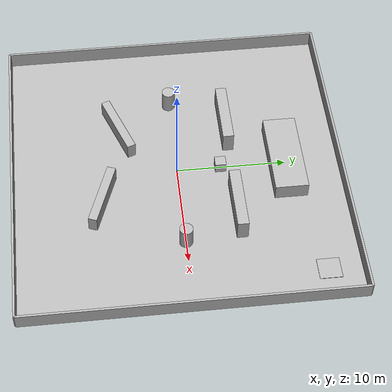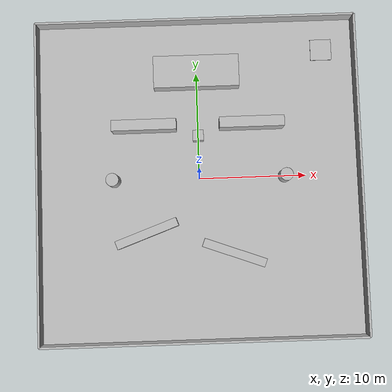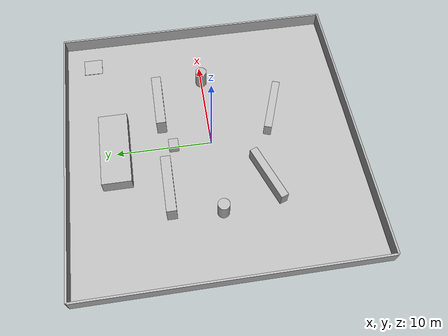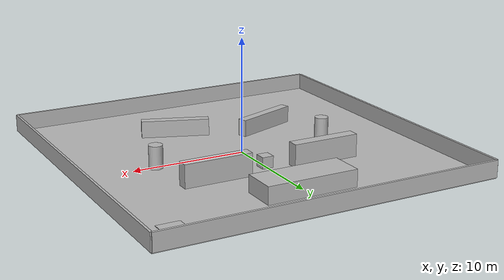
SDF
<?xml version="1.0" ?>
<sdf version="1.10">

  <world name="competition_world">

    <!-- Physics -->
    <gravity>0 0 -9.81</gravity>

    <plugin filename="gz-sim-physics-system"
            name="gz::sim::systems::Physics"/>

    <plugin filename="gz-sim-user-commands-system"
            name="gz::sim::systems::UserCommands"/>

    <plugin filename="gz-sim-scene-broadcaster-system"
            name="gz::sim::systems::SceneBroadcaster"/>

    <plugin filename="gz-sim-sensors-system"
            name="gz::sim::systems::Sensors">
      <render_engine>ogre2</render_engine>
    </plugin>

    <!-- Light -->
    <light type="directional" name="sun">
      <pose>0 0 20 0 0 0</pose>
      <direction>-0.5 0.5 -1</direction>
    </light>

    <!-- Ground -->
    <model name="ground">
      <static>true</static>
      <link name="link">

        <collision name="collision">
          <geometry>
            <box>
              <size>30 30 0.1</size>
            </box>
          </geometry>
          <pose>0 0 -0.05 0 0 0</pose>
        </collision>

        <visual name="visual">
          <geometry>
            <box>
              <size>30 30 0.1</size>
            </box>
          </geometry>
          <pose>0 0 -0.05 0 0 0</pose>
        </visual>

      </link>
    </model>

    <!-- North wall -->
    <model name="wall_north">
      <static>true</static>
      <pose>0 15 0.75 0 0 0</pose>
      <link name="link">

        <collision name="collision">
          <geometry>
            <box>
              <size>30 0.2 1.5</size>
            </box>
          </geometry>
        </collision>

        <visual name="visual">
          <geometry>
            <box>
              <size>30 0.2 1.5</size>
            </box>
          </geometry>
        </visual>

      </link>
    </model>

    <!-- South wall -->
    <model name="wall_south">
      <static>true</static>
      <pose>0 -15 0.75 0 0 0</pose>
      <link name="link">

        <collision name="collision">
          <geometry>
            <box>
              <size>30 0.2 1.5</size>
            </box>
          </geometry>
        </collision>

        <visual name="visual">
          <geometry>
            <box>
              <size>30 0.2 1.5</size>
            </box>
          </geometry>
        </visual>

      </link>
    </model>

    <!-- East wall -->
    <model name="wall_east">
      <static>true</static>
      <pose>15 0 0.75 0 0 0</pose>
      <link name="link">

        <collision name="collision">
          <geometry>
            <box>
              <size>0.2 30 1.5</size>
            </box>
          </geometry>
        </collision>

        <visual name="visual">
          <geometry>
            <box>
              <size>0.2 30 1.5</size>
            </box>
          </geometry>
        </visual>

      </link>
    </model>

    <!-- West wall -->
    <model name="wall_west">
      <static>true</static>
      <pose>-15 0 0.75 0 0 0</pose>
      <link name="link">

        <collision name="collision">
          <geometry>
            <box>
              <size>0.2 30 1.5</size>
            </box>
          </geometry>
        </collision>

        <visual name="visual">
          <geometry>
            <box>
              <size>0.2 30 1.5</size>
            </box>
          </geometry>
        </visual>

      </link>
    </model>

    <!-- Rack 1 -->
    <model name="rack_1">
      <static>true</static>
      <pose>-5 5 1 0 0 0</pose>
      <link name="link">

        <collision name="collision">
          <geometry>
            <box>
              <size>6 1 2</size>
            </box>
          </geometry>
        </collision>

        <visual name="visual">
          <geometry>
            <box>
              <size>6 1 2</size>
            </box>
          </geometry>
        </visual>

      </link>
    </model>

    <!-- Rack 2 -->
    <model name="rack_2">
      <static>true</static>
      <pose>5 5 1 0 0 0</pose>
      <link name="link">

        <collision name="collision">
          <geometry>
            <box>
              <size>6 1 2</size>
            </box>
          </geometry>
        </collision>

        <visual name="visual">
          <geometry>
            <box>
              <size>6 1 2</size>
            </box>
          </geometry>
        </visual>

      </link>
    </model>

    <!-- Pillar 1 -->
    <model name="pillar_1">
      <static>true</static>
      <pose>-8 0 1 0 0 0</pose>
      <link name="link">

        <collision name="collision">
          <geometry>
            <cylinder>
              <radius>0.6</radius>
              <length>2</length>
            </cylinder>
          </geometry>
        </collision>

        <visual name="visual">
          <geometry>
            <cylinder>
              <radius>0.6</radius>
              <length>2</length>
            </cylinder>
          </geometry>
        </visual>

      </link>
    </model>

    <!-- Pillar 2 -->
    <model name="pillar_2">
      <static>true</static>
      <pose>8 0 1 0 0 0</pose>
      <link name="link">

        <collision name="collision">
          <geometry>
            <cylinder>
              <radius>0.6</radius>
              <length>2</length>
            </cylinder>
          </geometry>
        </collision>

        <visual name="visual">
          <geometry>
            <cylinder>
              <radius>0.6</radius>
              <length>2</length>
            </cylinder>
          </geometry>
        </visual>

      </link>
    </model>

    <!-- Zig-zag obstacle 1 -->
    <model name="zigzag_1">
      <static>true</static>
      <pose>-5 -5 0.75 0 0 0.35</pose>
      <link name="link">

        <collision name="collision">
          <geometry>
            <box>
              <size>6 0.8 1.5</size>
            </box>
          </geometry>
        </collision>

        <visual name="visual">
          <geometry>
            <box>
              <size>6 0.8 1.5</size>
            </box>
          </geometry>
        </visual>

      </link>
    </model>

    <!-- Zig-zag obstacle 2 -->
    <model name="zigzag_2">
      <static>true</static>
      <pose>3 -7 0.75 0 0 -0.35</pose>
      <link name="link">

        <collision name="collision">
          <geometry>
            <box>
              <size>6 0.8 1.5</size>
            </box>
          </geometry>
        </collision>

        <visual name="visual">
          <geometry>
            <box>
              <size>6 0.8 1.5</size>
            </box>
          </geometry>
        </visual>

      </link>
    </model>

    <!-- Elevated platform -->
    <model name="elevated_platform">
      <static>true</static>
      <pose>0 10 0.75 0 0 0</pose>
      <link name="link">

        <collision name="collision">
          <geometry>
            <box>
              <size>8 3 1.5</size>
            </box>
          </geometry>
        </collision>

        <visual name="visual">
          <geometry>
            <box>
              <size>8 3 1.5</size>
            </box>
          </geometry>
        </visual>

      </link>
    </model>

    <!-- Goal marker -->
    <model name="goal_marker">
      <static>true</static>
      <pose>12 12 0.02 0 0 0</pose>
      <link name="link">

        <visual name="visual">
          <geometry>
            <box>
              <size>2 2 0.04</size>
            </box>
          </geometry>
        </visual>

      </link>
    </model>

    <!-- Dynamic obstacle -->
    <model name="moving_obstacle">
      <static>false</static>
      <pose>0 4 0.5 0 0 0</pose>

      <link name="link">
        <inertial>
          <mass>5.0</mass>
          <inertia>
            <ixx>0.2</ixx>
            <iyy>0.2</iyy>
            <izz>0.2</izz>
          </inertia>
        </inertial>

        <collision name="collision">
          <geometry>
            <box>
              <size>1 1 1</size>
            </box>
          </geometry>
        </collision>

        <visual name="visual">
          <geometry>
            <box>
              <size>1 1 1</size>
            </box>
          </geometry>
        </visual>
      </link>
    </model>

  </world>
</sdf>
